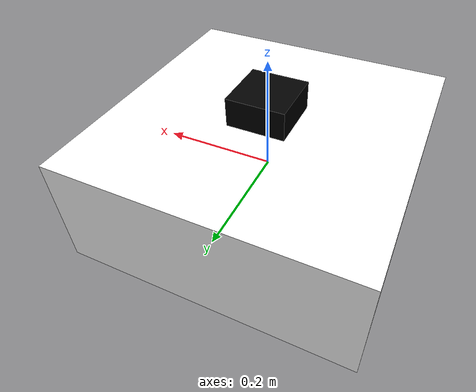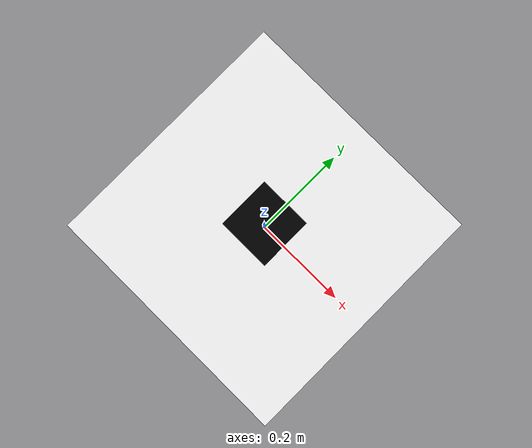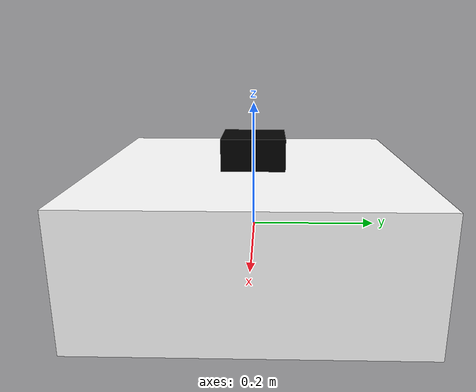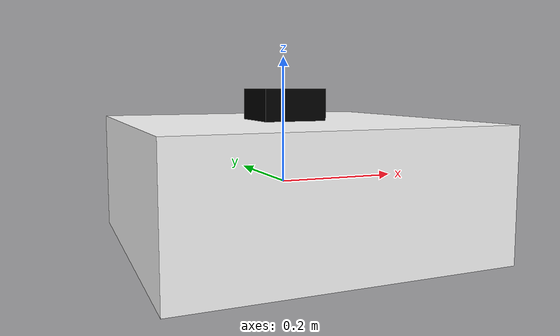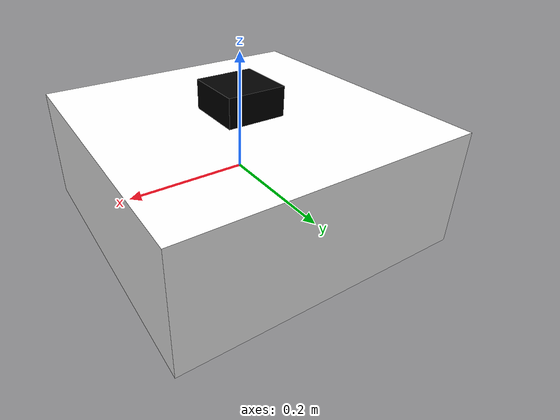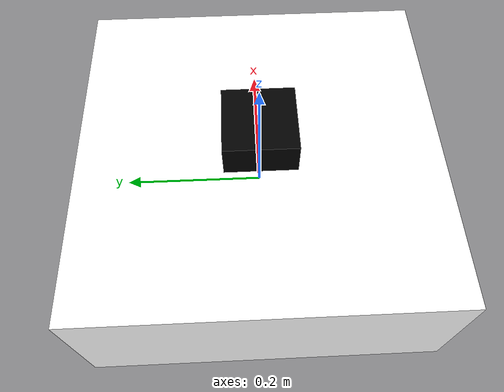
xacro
<?xml version="1.0" ?>
<robot name="ai_drone" xmlns:xacro="http://ros.org/wiki/xacro">
  <xacro:property name="body_length" value="0.5" />
  <xacro:property name="body_width" value="0.5" />
  <xacro:property name="body_height" value="0.2" />
  <xacro:property name="camera_size" value="0.1" />
  <xacro:property name="camera_color" value="0 0 0 1" />

  <link name="base_link">
    <visual>
      <geometry>
        <box size="${body_length} ${body_width} ${body_height}"/>
      </geometry>
      <material name="white">
        <color rgba="1 1 1 1"/>
      </material>
    </visual>
    <collision>
      <geometry>
        <box size="${body_length} ${body_width} ${body_height}"/>
      </geometry>
    </collision>
    <inertial>
      <mass value="1.0"/>
      <inertia ixx="0.01" ixy="0.0" ixz="0.0" iyy="0.01" iyz="0.0" izz="0.01"/>
    </inertial>
  </link>

  <!-- Camera -->
  <link name="camera_link">
    <visual>
      <geometry>
        <box size="${camera_size} ${camera_size} ${camera_size}"/>
      </geometry>
      <material name="camera_color">
        <color rgba="${camera_color}"/>
      </material>
    </visual>
    <collision>
      <geometry>
        <box size="${camera_size} ${camera_size} ${camera_size}"/>
      </geometry>
    </collision>
    <inertial>
      <mass value="0.1"/>
      <inertia ixx="0.01" ixy="0.0" ixz="0.0" iyy="0.01" iyz="0.0" izz="0.01"/>
    </inertial>
  </link>
  <joint name="camera_joint" type="fixed">
    <parent link="base_link"/>
    <child link="camera_link"/>
    <origin xyz="0 0 0.1" rpy="0 0 0"/>
  </joint>

  <!-- IMU -->
  <gazebo>
    <plugin name="imu_sensor" filename="libgazebo_ros_imu.so">
      <ros>
        <namespace>/</namespace>
        <remapping>gz_imu:=imu</remapping>
      </ros>
      <robotNamespace/>
      <update_rate>50.0</update_rate>
      <body_name>base_link</body_name>
      <topic_name>imu</topic_name>
      <service_name>~/imu_calibrate</service_name>
      <gaussian_noise>0.01</gaussian_noise>
    </plugin>
  </gazebo>

  <!-- GPS -->
  <gazebo>
    <plugin name="gps_plugin" filename="libgazebo_ros_gps.so">
      <ros>
        <namespace>/</namespace>
        <remapping>fix:=gps/fix</remapping>
        <remapping>velocity:=gps/velocity</remapping>
      </ros>
      <robotNamespace/>
      <update_rate>5.0</update_rate>
      <body_name>base_link</body_name>
    </plugin>
  </gazebo>

  <!-- LiDAR -->
  <gazebo>
    <plugin name="gpu_ray" filename="libgazebo_ros_gpu_laser.so">
      <ros>
        <namespace>/</namespace>
        <remapping>scan:=scan</remapping>
      </ros>
      <robotNamespace/>
      <update_rate>10.0</update_rate>
      <body_name>base_link</body_name>
      <topic_name>scan</topic_name>
      <frame_name>base_link</frame_name>
    </plugin>
  </gazebo>
</robot>
